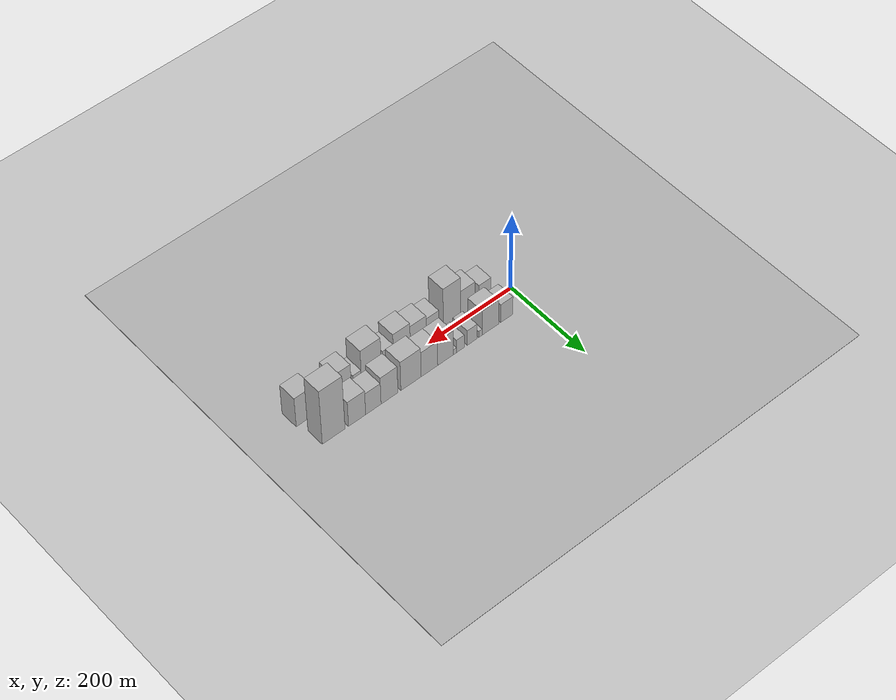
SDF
<?xml version="1.0" encoding="utf-8"?>

<sdf version="1.6">

   <world name="default">

      <gui fullscreen="0">

         <camera name="user_camera">

            <pose>-15 0 4.57585 0 0 0</pose>

            <view_controller>orbit</view_controller>

         </camera>

      </gui>

      <scene>

         <sky>

           <clouds>

             <speed>12</speed>

           </clouds>

         </sky>

         <ambient>0.4 0.4 0.4 1</ambient>

         <background>0.7 0.7 0.7 1</background>

         <shadows>1</shadows>

      </scene>

      <gravity>0 0 -9.8066</gravity>

      <magnetic_field>6e-06 2.3e-05 -4.2e-05</magnetic_field>

      <physics default="0" name="default_physics" type="ode">

         <ode>

            <solver>

               <type>quick</type>

               <iters>10</iters>

               <sor>1.0</sor>

               <use_dynamic_moi_rescaling>0</use_dynamic_moi_rescaling>

            </solver>

            <constraints>

               <cfm>0</cfm>

               <erp>0.2</erp>

               <contact_max_correcting_vel>100</contact_max_correcting_vel>

               <contact_surface_layer>0.001</contact_surface_layer>

            </constraints>

         </ode>

         <max_step_size>0.004</max_step_size>

         <real_time_factor>1</real_time_factor>

         <real_time_update_rate>250</real_time_update_rate>

      </physics>

      <light name="sun" type="directional">

         <cast_shadows>1</cast_shadows>

         <pose>0 0 10 0 0 0</pose>

         <diffuse>0.8 0.8 0.8 1</diffuse>

         <specular>0.2 0.2 0.2 1</specular>

         <attenuation>

            <range>1000</range>

            <constant>0.9</constant>

            <linear>0.01</linear>

            <quadratic>0.001</quadratic>

         </attenuation>

         <direction>-0.5 0.1 -0.9</direction>

      </light>

      <include>

         <name>ground_plane_1</name>

         <uri>model://HANNAS_ground_plane</uri>

         <pose>0 0 0  0 0 0</pose>

      </include>

      <include>

         <name>ground_plane_2</name>

         <uri>model://HANNAS_ground_plane</uri>

         <pose>100 0 0  0 0 0</pose>

      </include>

      <model name="building_1">

         <static>1</static>

         <pose frame="">54.5127 30.0000 0 0.000000 0.000000 1.570796</pose>

         <link name="link">

            <pose frame="">0 0 25.50 0 0 0</pose>

            <collision name="collision">

               <geometry>

                  <box>

                     <size>40.0000 29.0255 51.0000</size>

                  </box>

               </geometry>

               <max_contacts>10</max_contacts>

               <surface>

                  <contact>

                     <ode/>

                  </contact>

                  <bounce/>

                  <friction>

                     <torsional>

                        <ode/>

                     </torsional>

                     <ode/>

                  </friction>

               </surface>

            </collision>

            <visual name="visual">

               <cast_shadows>0</cast_shadows>

               <geometry>

                  <box>

                     <size>40.0000 29.0255 51.0000</size>

                  </box>

               </geometry>

               <material>

                  <script>

                     <uri>model://HANNAS_wall/materials/scripts</uri>

                     <uri>model://HANNAS_wall/materials/textures</uri>

                     <name>vrc/HANNAS_wall</name>

                  </script>

               </material>

            </visual>

            <self_collide>0</self_collide>

            <enable_wind>0</enable_wind>

            <kinematic>0</kinematic>

         </link>

      </model>

      <model name="building_2">

         <static>1</static>

         <pose frame="">93.9410 30.0000 0 0.000000 0.000000 1.570796</pose>

         <link name="link">

            <pose frame="">0 0 34.50 0 0 0</pose>

            <collision name="collision">

               <geometry>

                  <box>

                     <size>40.0000 39.8310 69.0000</size>

                  </box>

               </geometry>

               <max_contacts>10</max_contacts>

               <surface>

                  <contact>

                     <ode/>

                  </contact>

                  <bounce/>

                  <friction>

                     <torsional>

                        <ode/>

                     </torsional>

                     <ode/>

                  </friction>

               </surface>

            </collision>

            <visual name="visual">

               <cast_shadows>0</cast_shadows>

               <geometry>

                  <box>

                     <size>40.0000 39.8310 69.0000</size>

                  </box>

               </geometry>

               <material>

                  <script>

                     <uri>model://HANNAS_wall/materials/scripts</uri>

                     <uri>model://HANNAS_wall/materials/textures</uri>

                     <name>vrc/HANNAS_wall</name>

                  </script>

               </material>

            </visual>

            <self_collide>0</self_collide>

            <enable_wind>0</enable_wind>

            <kinematic>0</kinematic>

         </link>

      </model>

      <model name="building_3">

         <static>1</static>

         <pose frame="">118.0509 30.0000 0 0.000000 0.000000 1.570796</pose>

         <link name="link">

            <pose frame="">0 0 9.00 0 0 0</pose>

            <collision name="collision">

               <geometry>

                  <box>

                     <size>40.0000 8.3888 18.0000</size>

                  </box>

               </geometry>

               <max_contacts>10</max_contacts>

               <surface>

                  <contact>

                     <ode/>

                  </contact>

                  <bounce/>

                  <friction>

                     <torsional>

                        <ode/>

                     </torsional>

                     <ode/>

                  </friction>

               </surface>

            </collision>

            <visual name="visual">

               <cast_shadows>0</cast_shadows>

               <geometry>

                  <box>

                     <size>40.0000 8.3888 18.0000</size>

                  </box>

               </geometry>

               <material>

                  <script>

                     <uri>model://HANNAS_wall/materials/scripts</uri>

                     <uri>model://HANNAS_wall/materials/textures</uri>

                     <name>vrc/HANNAS_wall</name>

                  </script>

               </material>

            </visual>

            <self_collide>0</self_collide>

            <enable_wind>0</enable_wind>

            <kinematic>0</kinematic>

         </link>

      </model>

      <model name="building_4">

         <static>1</static>

         <pose frame="">138.0037 30.0000 0 0.000000 0.000000 1.570796</pose>

         <link name="link">

            <pose frame="">0 0 21.00 0 0 0</pose>

            <collision name="collision">

               <geometry>

                  <box>

                     <size>40.0000 23.5168 42.0000</size>

                  </box>

               </geometry>

               <max_contacts>10</max_contacts>

               <surface>

                  <contact>

                     <ode/>

                  </contact>

                  <bounce/>

                  <friction>

                     <torsional>

                        <ode/>

                     </torsional>

                     <ode/>

                  </friction>

               </surface>

            </collision>

            <visual name="visual">

               <cast_shadows>0</cast_shadows>

               <geometry>

                  <box>

                     <size>40.0000 23.5168 42.0000</size>

                  </box>

               </geometry>

               <material>

                  <script>

                     <uri>model://HANNAS_wall/materials/scripts</uri>

                     <uri>model://HANNAS_wall/materials/textures</uri>

                     <name>vrc/HANNAS_wall</name>

                  </script>

               </material>

            </visual>

            <self_collide>0</self_collide>

            <enable_wind>0</enable_wind>

            <kinematic>0</kinematic>

         </link>

      </model>

      <model name="building_5">

         <static>1</static>

         <pose frame="">166.1332 30.0000 0 0.000000 0.000000 1.570796</pose>

         <link name="link">

            <pose frame="">0 0 18.00 0 0 0</pose>

            <collision name="collision">

               <geometry>

                  <box>

                     <size>40.0000 18.7422 36.0000</size>

                  </box>

               </geometry>

               <max_contacts>10</max_contacts>

               <surface>

                  <contact>

                     <ode/>

                  </contact>

                  <bounce/>

                  <friction>

                     <torsional>

                        <ode/>

                     </torsional>

                     <ode/>

                  </friction>

               </surface>

            </collision>

            <visual name="visual">

               <cast_shadows>0</cast_shadows>

               <geometry>

                  <box>

                     <size>40.0000 18.7422 36.0000</size>

                  </box>

               </geometry>

               <material>

                  <script>

                     <uri>model://HANNAS_wall/materials/scripts</uri>

                     <uri>model://HANNAS_wall/materials/textures</uri>

                     <name>vrc/HANNAS_wall</name>

                  </script>

               </material>

            </visual>

            <self_collide>0</self_collide>

            <enable_wind>0</enable_wind>

            <kinematic>0</kinematic>

         </link>

      </model>

      <model name="building_6">

         <static>1</static>

         <pose frame="">179.1891 30.0000 0 0.000000 0.000000 1.570796</pose>

         <link name="link">

            <pose frame="">0 0 7.50 0 0 0</pose>

            <collision name="collision">

               <geometry>

                  <box>

                     <size>40.0000 7.3696 15.0000</size>

                  </box>

               </geometry>

               <max_contacts>10</max_contacts>

               <surface>

                  <contact>

                     <ode/>

                  </contact>

                  <bounce/>

                  <friction>

                     <torsional>

                        <ode/>

                     </torsional>

                     <ode/>

                  </friction>

               </surface>

            </collision>

            <visual name="visual">

               <cast_shadows>0</cast_shadows>

               <geometry>

                  <box>

                     <size>40.0000 7.3696 15.0000</size>

                  </box>

               </geometry>

               <material>

                  <script>

                     <uri>model://HANNAS_wall/materials/scripts</uri>

                     <uri>model://HANNAS_wall/materials/textures</uri>

                     <name>vrc/HANNAS_wall</name>

                  </script>

               </material>

            </visual>

            <self_collide>0</self_collide>

            <enable_wind>0</enable_wind>

            <kinematic>0</kinematic>

         </link>

      </model>

      <model name="building_7">

         <static>1</static>

         <pose frame="">201.5711 30.0000 0 0.000000 0.000000 1.570796</pose>

         <link name="link">

            <pose frame="">0 0 34.50 0 0 0</pose>

            <collision name="collision">

               <geometry>

                  <box>

                     <size>40.0000 37.3944 69.0000</size>

                  </box>

               </geometry>

               <max_contacts>10</max_contacts>

               <surface>

                  <contact>

                     <ode/>

                  </contact>

                  <bounce/>

                  <friction>

                     <torsional>

                        <ode/>

                     </torsional>

                     <ode/>

                  </friction>

               </surface>

            </collision>

            <visual name="visual">

               <cast_shadows>0</cast_shadows>

               <geometry>

                  <box>

                     <size>40.0000 37.3944 69.0000</size>

                  </box>

               </geometry>

               <material>

                  <script>

                     <uri>model://HANNAS_wall/materials/scripts</uri>

                     <uri>model://HANNAS_wall/materials/textures</uri>

                     <name>vrc/HANNAS_wall</name>

                  </script>

               </material>

            </visual>

            <self_collide>0</self_collide>

            <enable_wind>0</enable_wind>

            <kinematic>0</kinematic>

         </link>

      </model>

      <model name="building_8">

         <static>1</static>

         <pose frame="">239.8766 30.0000 0 0.000000 0.000000 1.570796</pose>

         <link name="link">

            <pose frame="">0 0 34.50 0 0 0</pose>

            <collision name="collision">

               <geometry>

                  <box>

                     <size>40.0000 39.2166 69.0000</size>

                  </box>

               </geometry>

               <max_contacts>10</max_contacts>

               <surface>

                  <contact>

                     <ode/>

                  </contact>

                  <bounce/>

                  <friction>

                     <torsional>

                        <ode/>

                     </torsional>

                     <ode/>

                  </friction>

               </surface>

            </collision>

            <visual name="visual">

               <cast_shadows>0</cast_shadows>

               <geometry>

                  <box>

                     <size>40.0000 39.2166 69.0000</size>

                  </box>

               </geometry>

               <material>

                  <script>

                     <uri>model://HANNAS_wall/materials/scripts</uri>

                     <uri>model://HANNAS_wall/materials/textures</uri>

                     <name>vrc/HANNAS_wall</name>

                  </script>

               </material>

            </visual>

            <self_collide>0</self_collide>

            <enable_wind>0</enable_wind>

            <kinematic>0</kinematic>

         </link>

      </model>

      <model name="building_9">

         <static>1</static>

         <pose frame="">283.1481 30.0000 0 0.000000 0.000000 1.570796</pose>

         <link name="link">

            <pose frame="">0 0 40.50 0 0 0</pose>

            <collision name="collision">

               <geometry>

                  <box>

                     <size>40.0000 47.3264 81.0000</size>

                  </box>

               </geometry>

               <max_contacts>10</max_contacts>

               <surface>

                  <contact>

                     <ode/>

                  </contact>

                  <bounce/>

                  <friction>

                     <torsional>

                        <ode/>

                     </torsional>

                     <ode/>

                  </friction>

               </surface>

            </collision>

            <visual name="visual">

               <cast_shadows>0</cast_shadows>

               <geometry>

                  <box>

                     <size>40.0000 47.3264 81.0000</size>

                  </box>

               </geometry>

               <material>

                  <script>

                     <uri>model://HANNAS_wall/materials/scripts</uri>

                     <uri>model://HANNAS_wall/materials/textures</uri>

                     <name>vrc/HANNAS_wall</name>

                  </script>

               </material>

            </visual>

            <self_collide>0</self_collide>

            <enable_wind>0</enable_wind>

            <kinematic>0</kinematic>

         </link>

      </model>

      <model name="building_10">

         <static>1</static>

         <pose frame="">333.3350 30.0000 0 0.000000 0.000000 1.570796</pose>

         <link name="link">

            <pose frame="">0 0 37.50 0 0 0</pose>

            <collision name="collision">

               <geometry>

                  <box>

                     <size>40.0000 39.0474 75.0000</size>

                  </box>

               </geometry>

               <max_contacts>10</max_contacts>

               <surface>

                  <contact>

                     <ode/>

                  </contact>

                  <bounce/>

                  <friction>

                     <torsional>

                        <ode/>

                     </torsional>

                     <ode/>

                  </friction>

               </surface>

            </collision>

            <visual name="visual">

               <cast_shadows>0</cast_shadows>

               <geometry>

                  <box>

                     <size>40.0000 39.0474 75.0000</size>

                  </box>

               </geometry>

               <material>

                  <script>

                     <uri>model://HANNAS_wall/materials/scripts</uri>

                     <uri>model://HANNAS_wall/materials/textures</uri>

                     <name>vrc/HANNAS_wall</name>

                  </script>

               </material>

            </visual>

            <self_collide>0</self_collide>

            <enable_wind>0</enable_wind>

            <kinematic>0</kinematic>

         </link>

      </model>

      <model name="building_11">

         <static>1</static>

         <pose frame="">370.5648 30.0000 0 0.000000 0.000000 1.570796</pose>

         <link name="link">

            <pose frame="">0 0 30.00 0 0 0</pose>

            <collision name="collision">

               <geometry>

                  <box>

                     <size>40.0000 35.4122 60.0000</size>

                  </box>

               </geometry>

               <max_contacts>10</max_contacts>

               <surface>

                  <contact>

                     <ode/>

                  </contact>

                  <bounce/>

                  <friction>

                     <torsional>

                        <ode/>

                     </torsional>

                     <ode/>

                  </friction>

               </surface>

            </collision>

            <visual name="visual">

               <cast_shadows>0</cast_shadows>

               <geometry>

                  <box>

                     <size>40.0000 35.4122 60.0000</size>

                  </box>

               </geometry>

               <material>

                  <script>

                     <uri>model://HANNAS_wall/materials/scripts</uri>

                     <uri>model://HANNAS_wall/materials/textures</uri>

                     <name>vrc/HANNAS_wall</name>

                  </script>

               </material>

            </visual>

            <self_collide>0</self_collide>

            <enable_wind>0</enable_wind>

            <kinematic>0</kinematic>

         </link>

      </model>

      <model name="building_12">

         <static>1</static>

         <pose frame="">407.8676 30.0000 0 0.000000 0.000000 1.570796</pose>

         <link name="link">

            <pose frame="">0 0 34.50 0 0 0</pose>

            <collision name="collision">

               <geometry>

                  <box>

                     <size>40.0000 39.1934 69.0000</size>

                  </box>

               </geometry>

               <max_contacts>10</max_contacts>

               <surface>

                  <contact>

                     <ode/>

                  </contact>

                  <bounce/>

                  <friction>

                     <torsional>

                        <ode/>

                     </torsional>

                     <ode/>

                  </friction>

               </surface>

            </collision>

            <visual name="visual">

               <cast_shadows>0</cast_shadows>

               <geometry>

                  <box>

                     <size>40.0000 39.1934 69.0000</size>

                  </box>

               </geometry>

               <material>

                  <script>

                     <uri>model://HANNAS_wall/materials/scripts</uri>

                     <uri>model://HANNAS_wall/materials/textures</uri>

                     <name>vrc/HANNAS_wall</name>

                  </script>

               </material>

            </visual>

            <self_collide>0</self_collide>

            <enable_wind>0</enable_wind>

            <kinematic>0</kinematic>

         </link>

      </model>

      <model name="building_13">

         <static>1</static>

         <pose frame="">461.2493 30.0000 0 0.000000 0.000000 1.570796</pose>

         <link name="link">

            <pose frame="">0 0 75.00 0 0 0</pose>

            <collision name="collision">

               <geometry>

                  <box>

                     <size>40.0000 51.5702 150.0000</size>

                  </box>

               </geometry>

               <max_contacts>10</max_contacts>

               <surface>

                  <contact>

                     <ode/>

                  </contact>

                  <bounce/>

                  <friction>

                     <torsional>

                        <ode/>

                     </torsional>

                     <ode/>

                  </friction>

               </surface>

            </collision>

            <visual name="visual">

               <cast_shadows>0</cast_shadows>

               <geometry>

                  <box>

                     <size>40.0000 51.5702 150.0000</size>

                  </box>

               </geometry>

               <material>

                  <script>

                     <uri>model://HANNAS_wall/materials/scripts</uri>

                     <uri>model://HANNAS_wall/materials/textures</uri>

                     <name>vrc/HANNAS_wall</name>

                  </script>

               </material>

            </visual>

            <self_collide>0</self_collide>

            <enable_wind>0</enable_wind>

            <kinematic>0</kinematic>

         </link>

      </model>

      <model name="building_14">

         <static>1</static>

         <pose frame="">54.6709 -30.0000 0 0.000000 0.000000 1.570796</pose>

         <link name="link">

            <pose frame="">0 0 25.50 0 0 0</pose>

            <collision name="collision">

               <geometry>

                  <box>

                     <size>40.0000 29.3418 51.0000</size>

                  </box>

               </geometry>

               <max_contacts>10</max_contacts>

               <surface>

                  <contact>

                     <ode/>

                  </contact>

                  <bounce/>

                  <friction>

                     <torsional>

                        <ode/>

                     </torsional>

                     <ode/>

                  </friction>

               </surface>

            </collision>

            <visual name="visual">

               <cast_shadows>0</cast_shadows>

               <geometry>

                  <box>

                     <size>40.0000 29.3418 51.0000</size>

                  </box>

               </geometry>

               <material>

                  <script>

                     <uri>model://HANNAS_wall/materials/scripts</uri>

                     <uri>model://HANNAS_wall/materials/textures</uri>

                     <name>vrc/HANNAS_wall</name>

                  </script>

               </material>

            </visual>

            <self_collide>0</self_collide>

            <enable_wind>0</enable_wind>

            <kinematic>0</kinematic>

         </link>

      </model>

      <model name="building_15">

         <static>1</static>

         <pose frame="">95.9269 -30.0000 0 0.000000 0.000000 1.570796</pose>

         <link name="link">

            <pose frame="">0 0 34.50 0 0 0</pose>

            <collision name="collision">

               <geometry>

                  <box>

                     <size>40.0000 35.1702 69.0000</size>

                  </box>

               </geometry>

               <max_contacts>10</max_contacts>

               <surface>

                  <contact>

                     <ode/>

                  </contact>

                  <bounce/>

                  <friction>

                     <torsional>

                        <ode/>

                     </torsional>

                     <ode/>

                  </friction>

               </surface>

            </collision>

            <visual name="visual">

               <cast_shadows>0</cast_shadows>

               <geometry>

                  <box>

                     <size>40.0000 35.1702 69.0000</size>

                  </box>

               </geometry>

               <material>

                  <script>

                     <uri>model://HANNAS_wall/materials/scripts</uri>

                     <uri>model://HANNAS_wall/materials/textures</uri>

                     <name>vrc/HANNAS_wall</name>

                  </script>

               </material>

            </visual>

            <self_collide>0</self_collide>

            <enable_wind>0</enable_wind>

            <kinematic>0</kinematic>

         </link>

      </model>

      <model name="building_16">

         <static>1</static>

         <pose frame="">134.3522 -30.0000 0 0.000000 0.000000 1.570796</pose>

         <link name="link">

            <pose frame="">0 0 54.00 0 0 0</pose>

            <collision name="collision">

               <geometry>

                  <box>

                     <size>40.0000 41.6802 108.0000</size>

                  </box>

               </geometry>

               <max_contacts>10</max_contacts>

               <surface>

                  <contact>

                     <ode/>

                  </contact>

                  <bounce/>

                  <friction>

                     <torsional>

                        <ode/>

                     </torsional>

                     <ode/>

                  </friction>

               </surface>

            </collision>

            <visual name="visual">

               <cast_shadows>0</cast_shadows>

               <geometry>

                  <box>

                     <size>40.0000 41.6802 108.0000</size>

                  </box>

               </geometry>

               <material>

                  <script>

                     <uri>model://HANNAS_wall/materials/scripts</uri>

                     <uri>model://HANNAS_wall/materials/textures</uri>

                     <name>vrc/HANNAS_wall</name>

                  </script>

               </material>

            </visual>

            <self_collide>0</self_collide>

            <enable_wind>0</enable_wind>

            <kinematic>0</kinematic>

         </link>

      </model>

      <model name="building_17">

         <static>1</static>

         <pose frame="">180.4474 -30.0000 0 0.000000 0.000000 1.570796</pose>

         <link name="link">

            <pose frame="">0 0 28.50 0 0 0</pose>

            <collision name="collision">

               <geometry>

                  <box>

                     <size>40.0000 30.5102 57.0000</size>

                  </box>

               </geometry>

               <max_contacts>10</max_contacts>

               <surface>

                  <contact>

                     <ode/>

                  </contact>

                  <bounce/>

                  <friction>

                     <torsional>

                        <ode/>

                     </torsional>

                     <ode/>

                  </friction>

               </surface>

            </collision>

            <visual name="visual">

               <cast_shadows>0</cast_shadows>

               <geometry>

                  <box>

                     <size>40.0000 30.5102 57.0000</size>

                  </box>

               </geometry>

               <material>

                  <script>

                     <uri>model://HANNAS_wall/materials/scripts</uri>

                     <uri>model://HANNAS_wall/materials/textures</uri>

                     <name>vrc/HANNAS_wall</name>

                  </script>

               </material>

            </visual>

            <self_collide>0</self_collide>

            <enable_wind>0</enable_wind>

            <kinematic>0</kinematic>

         </link>

      </model>

      <model name="building_18">

         <static>1</static>

         <pose frame="">214.5947 -30.0000 0 0.000000 0.000000 1.570796</pose>

         <link name="link">

            <pose frame="">0 0 33.00 0 0 0</pose>

            <collision name="collision">

               <geometry>

                  <box>

                     <size>40.0000 37.7846 66.0000</size>

                  </box>

               </geometry>

               <max_contacts>10</max_contacts>

               <surface>

                  <contact>

                     <ode/>

                  </contact>

                  <bounce/>

                  <friction>

                     <torsional>

                        <ode/>

                     </torsional>

                     <ode/>

                  </friction>

               </surface>

            </collision>

            <visual name="visual">

               <cast_shadows>0</cast_shadows>

               <geometry>

                  <box>

                     <size>40.0000 37.7846 66.0000</size>

                  </box>

               </geometry>

               <material>

                  <script>

                     <uri>model://HANNAS_wall/materials/scripts</uri>

                     <uri>model://HANNAS_wall/materials/textures</uri>

                     <name>vrc/HANNAS_wall</name>

                  </script>

               </material>

            </visual>

            <self_collide>0</self_collide>

            <enable_wind>0</enable_wind>

            <kinematic>0</kinematic>

         </link>

      </model>

      <model name="building_19">

         <static>1</static>

         <pose frame="">253.3127 -30.0000 0 0.000000 0.000000 1.570796</pose>

         <link name="link">

            <pose frame="">0 0 37.50 0 0 0</pose>

            <collision name="collision">

               <geometry>

                  <box>

                     <size>40.0000 39.6514 75.0000</size>

                  </box>

               </geometry>

               <max_contacts>10</max_contacts>

               <surface>

                  <contact>

                     <ode/>

                  </contact>

                  <bounce/>

                  <friction>

                     <torsional>

                        <ode/>

                     </torsional>

                     <ode/>

                  </friction>

               </surface>

            </collision>

            <visual name="visual">

               <cast_shadows>0</cast_shadows>

               <geometry>

                  <box>

                     <size>40.0000 39.6514 75.0000</size>

                  </box>

               </geometry>

               <material>

                  <script>

                     <uri>model://HANNAS_wall/materials/scripts</uri>

                     <uri>model://HANNAS_wall/materials/textures</uri>

                     <name>vrc/HANNAS_wall</name>

                  </script>

               </material>

            </visual>

            <self_collide>0</self_collide>

            <enable_wind>0</enable_wind>

            <kinematic>0</kinematic>

         </link>

      </model>

      <model name="building_20">

         <static>1</static>

         <pose frame="">285.4028 -30.0000 0 0.000000 0.000000 1.570796</pose>

         <link name="link">

            <pose frame="">0 0 24.00 0 0 0</pose>

            <collision name="collision">

               <geometry>

                  <box>

                     <size>40.0000 24.5287 48.0000</size>

                  </box>

               </geometry>

               <max_contacts>10</max_contacts>

               <surface>

                  <contact>

                     <ode/>

                  </contact>

                  <bounce/>

                  <friction>

                     <torsional>

                        <ode/>

                     </torsional>

                     <ode/>

                  </friction>

               </surface>

            </collision>

            <visual name="visual">

               <cast_shadows>0</cast_shadows>

               <geometry>

                  <box>

                     <size>40.0000 24.5287 48.0000</size>

                  </box>

               </geometry>

               <material>

                  <script>

                     <uri>model://HANNAS_wall/materials/scripts</uri>

                     <uri>model://HANNAS_wall/materials/textures</uri>

                     <name>vrc/HANNAS_wall</name>

                  </script>

               </material>

            </visual>

            <self_collide>0</self_collide>

            <enable_wind>0</enable_wind>

            <kinematic>0</kinematic>

         </link>

      </model>

      <model name="building_21">

         <static>1</static>

         <pose frame="">324.7157 -30.0000 0 0.000000 0.000000 1.570796</pose>

         <link name="link">

            <pose frame="">0 0 45.00 0 0 0</pose>

            <collision name="collision">

               <geometry>

                  <box>

                     <size>40.0000 46.0971 90.0000</size>

                  </box>

               </geometry>

               <max_contacts>10</max_contacts>

               <surface>

                  <contact>

                     <ode/>

                  </contact>

                  <bounce/>

                  <friction>

                     <torsional>

                        <ode/>

                     </torsional>

                     <ode/>

                  </friction>

               </surface>

            </collision>

            <visual name="visual">

               <cast_shadows>0</cast_shadows>

               <geometry>

                  <box>

                     <size>40.0000 46.0971 90.0000</size>

                  </box>

               </geometry>

               <material>

                  <script>

                     <uri>model://HANNAS_wall/materials/scripts</uri>

                     <uri>model://HANNAS_wall/materials/textures</uri>

                     <name>vrc/HANNAS_wall</name>

                  </script>

               </material>

            </visual>

            <self_collide>0</self_collide>

            <enable_wind>0</enable_wind>

            <kinematic>0</kinematic>

         </link>

      </model>

      <model name="building_22">

         <static>1</static>

         <pose frame="">357.4211 -30.0000 0 0.000000 0.000000 1.570796</pose>

         <link name="link">

            <pose frame="">0 0 18.00 0 0 0</pose>

            <collision name="collision">

               <geometry>

                  <box>

                     <size>40.0000 19.3138 36.0000</size>

                  </box>

               </geometry>

               <max_contacts>10</max_contacts>

               <surface>

                  <contact>

                     <ode/>

                  </contact>

                  <bounce/>

                  <friction>

                     <torsional>

                        <ode/>

                     </torsional>

                     <ode/>

                  </friction>

               </surface>

            </collision>

            <visual name="visual">

               <cast_shadows>0</cast_shadows>

               <geometry>

                  <box>

                     <size>40.0000 19.3138 36.0000</size>

                  </box>

               </geometry>

               <material>

                  <script>

                     <uri>model://HANNAS_wall/materials/scripts</uri>

                     <uri>model://HANNAS_wall/materials/textures</uri>

                     <name>vrc/HANNAS_wall</name>

                  </script>

               </material>

            </visual>

            <self_collide>0</self_collide>

            <enable_wind>0</enable_wind>

            <kinematic>0</kinematic>

         </link>

      </model>

      <model name="building_23">

         <static>1</static>

         <pose frame="">390.2126 -30.0000 0 0.000000 0.000000 1.570796</pose>

         <link name="link">

            <pose frame="">0 0 36.00 0 0 0</pose>

            <collision name="collision">

               <geometry>

                  <box>

                     <size>40.0000 38.2691 72.0000</size>

                  </box>

               </geometry>

               <max_contacts>10</max_contacts>

               <surface>

                  <contact>

                     <ode/>

                  </contact>

                  <bounce/>

                  <friction>

                     <torsional>

                        <ode/>

                     </torsional>

                     <ode/>

                  </friction>

               </surface>

            </collision>

            <visual name="visual">

               <cast_shadows>0</cast_shadows>

               <geometry>

                  <box>

                     <size>40.0000 38.2691 72.0000</size>

                  </box>

               </geometry>

               <material>

                  <script>

                     <uri>model://HANNAS_wall/materials/scripts</uri>

                     <uri>model://HANNAS_wall/materials/textures</uri>

                     <name>vrc/HANNAS_wall</name>

                  </script>

               </material>

            </visual>

            <self_collide>0</self_collide>

            <enable_wind>0</enable_wind>

            <kinematic>0</kinematic>

         </link>

      </model>

      <model name="building_24">

         <static>1</static>

         <pose frame="">430.4906 -30.0000 0 0.000000 0.000000 1.570796</pose>

         <link name="link">

            <pose frame="">0 0 27.00 0 0 0</pose>

            <collision name="collision">

               <geometry>

                  <box>

                     <size>40.0000 30.2871 54.0000</size>

                  </box>

               </geometry>

               <max_contacts>10</max_contacts>

               <surface>

                  <contact>

                     <ode/>

                  </contact>

                  <bounce/>

                  <friction>

                     <torsional>

                        <ode/>

                     </torsional>

                     <ode/>

                  </friction>

               </surface>

            </collision>

            <visual name="visual">

               <cast_shadows>0</cast_shadows>

               <geometry>

                  <box>

                     <size>40.0000 30.2871 54.0000</size>

                  </box>

               </geometry>

               <material>

                  <script>

                     <uri>model://HANNAS_wall/materials/scripts</uri>

                     <uri>model://HANNAS_wall/materials/textures</uri>

                     <name>vrc/HANNAS_wall</name>

                  </script>

               </material>

            </visual>

            <self_collide>0</self_collide>

            <enable_wind>0</enable_wind>

            <kinematic>0</kinematic>

         </link>

      </model>

      <model name="building_25">

         <static>1</static>

         <pose frame="">476.4465 -30.0000 0 0.000000 0.000000 1.570796</pose>

         <link name="link">

            <pose frame="">0 0 40.50 0 0 0</pose>

            <collision name="collision">

               <geometry>

                  <box>

                     <size>40.0000 41.6246 81.0000</size>

                  </box>

               </geometry>

               <max_contacts>10</max_contacts>

               <surface>

                  <contact>

                     <ode/>

                  </contact>

                  <bounce/>

                  <friction>

                     <torsional>

                        <ode/>

                     </torsional>

                     <ode/>

                  </friction>

               </surface>

            </collision>

            <visual name="visual">

               <cast_shadows>0</cast_shadows>

               <geometry>

                  <box>

                     <size>40.0000 41.6246 81.0000</size>

                  </box>

               </geometry>

               <material>

                  <script>

                     <uri>model://HANNAS_wall/materials/scripts</uri>

                     <uri>model://HANNAS_wall/materials/textures</uri>

                     <name>vrc/HANNAS_wall</name>

                  </script>

               </material>

            </visual>

            <self_collide>0</self_collide>

            <enable_wind>0</enable_wind>

            <kinematic>0</kinematic>

         </link>

      </model>

   </world>

</sdf>

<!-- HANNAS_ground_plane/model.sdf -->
<sdf version="1.4">
<model name="HANNAS_ground_plane">
  <static>true</static>
    <link name="link">
      <collision name="collision">
        <geometry>
          <plane>
            <normal>0 0 1</normal>
            <size>1000 1000</size>
          </plane>
        </geometry>
        <surface>
          <friction>
            <ode>
              <mu>100</mu>
              <mu2>50</mu2>
            </ode>
          </friction>
        </surface>
      </collision>
      <visual name="visual">
        <cast_shadows>false</cast_shadows>
        <geometry>
          <plane>
            <normal>0 0 1</normal>
            <size>1000 1000</size>
          </plane>
        </geometry>
        <material>
          <script>
            <uri>model://HANNAS_ground_plane/materials/scripts/HANNAS_ground_plane.material</uri>
	    <uri>model://HANNAS_ground_plane/materials/textures</uri>
            <name>HANNASGroundPlane/Image</name>
          </script>
        </material>
      </visual>
    </link>
  </model>
</sdf>
